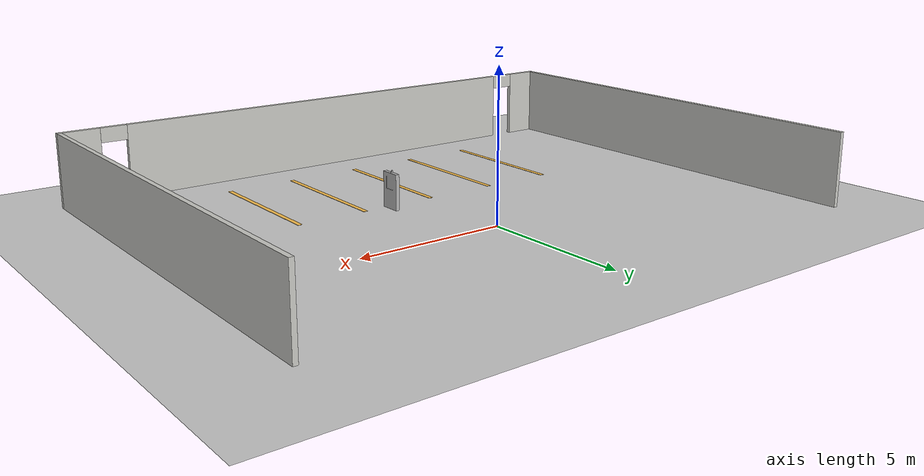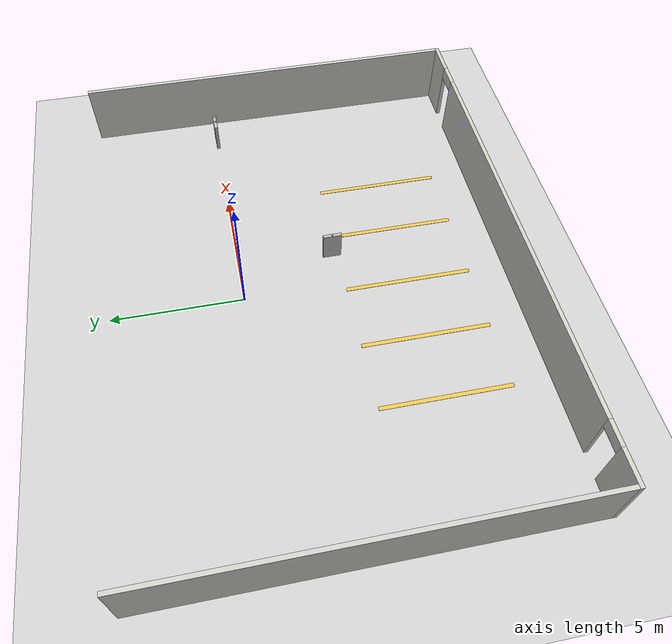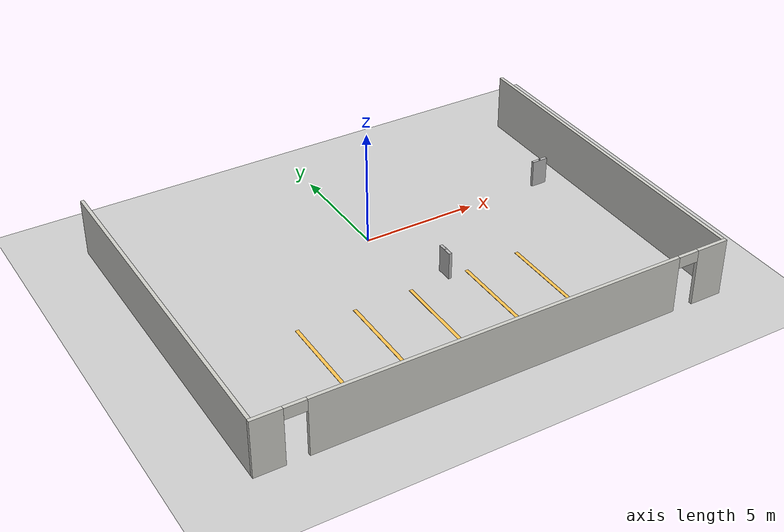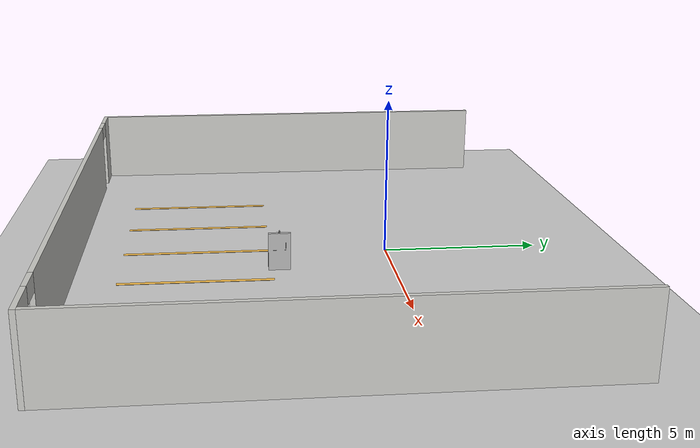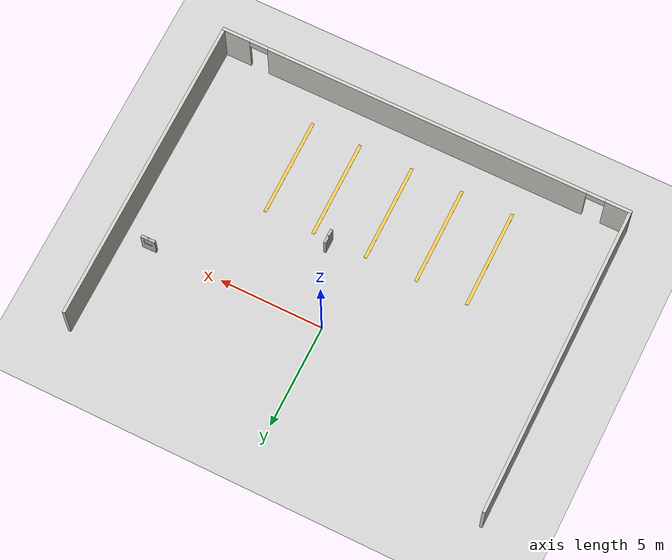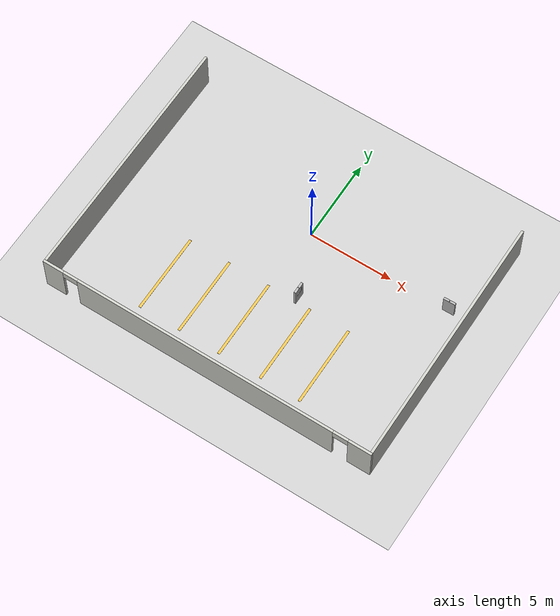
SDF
<sdf version="1.6">
 <world name="default">
  <light name="sun" type="directional">
   <pose>0 0 10 0 -0 0</pose>
   <diffuse>0.8 0.8 0.8 1</diffuse>
   <specular>0.2 0.2 0.2 1</specular>
   <attenuation>
    <range>1000</range>
    <constant>0.9</constant>
    <linear>0.01</linear>
    <quadratic>0.001</quadratic>
   </attenuation>
   <direction>-0.5 0.1 -0.9</direction>
  </light>
  <model name="ground_plane">
   <static>1</static>
   <link name="link">
    <collision name="collision">
     <geometry><plane><normal>0 0 1</normal><size>100 100</size></plane></geometry>
     <surface>
      <contact><collide_bitmask>65535</collide_bitmask></contact>
      <friction><ode><mu>100</mu><mu2>50</mu2></ode></friction>
     </surface>
    </collision>
    <visual name="visual">
     <cast_shadows>0</cast_shadows>
     <geometry><plane><normal>0 0 1</normal><size>100 100</size></plane></geometry>
     <material>
      <script><uri>file://media/materials/scripts/gazebo.material</uri><name>Gazebo/Grey</name></script>
     </material>
    </visual>
   </link>
  </model>
  <gravity>0 0 -9.8</gravity>
  <magnetic_field>6e-06 2.3e-05 -4.2e-05</magnetic_field>
  <atmosphere type="adiabatic"/>
  <physics name="default_physics" default="0" type="ode">
   <max_step_size>0.001</max_step_size>
   <real_time_factor>1</real_time_factor>
   <real_time_update_rate>1000</real_time_update_rate>
  </physics>
  <scene><ambient>0.4 0.4 0.4 1</ambient><background>0.7 0.7 0.7 1</background><shadows>1</shadows></scene>
  <audio><device>default</device></audio>
  <spherical_coordinates>
   <surface_model>EARTH_WGS84</surface_model>
   <latitude_deg>0</latitude_deg>
   <longitude_deg>0</longitude_deg>
   <elevation>0</elevation>
   <heading_deg>0</heading_deg>
  </spherical_coordinates>
  <model name="parking_lot_0">
   <pose>-0.108436 -2.52637 0 0 -0 0</pose>
   <link name="Wall_38">
    <pose>0 -7.5 0 0 -0 0</pose>
    <visual name="Wall_38_Visual_0">
     <pose>-9.44335 0 1.25 0 -0 0</pose>
     <geometry><box><size>1.26329 0.15 2.5</size></box></geometry>
     <material>
      <script><uri>file://media/materials/scripts/gazebo.material</uri><name>Gazebo/CeilingTiled</name></script>
      <ambient>1 1 1 1</ambient>
     </material>
     <meta><layer>0</layer></meta>
    </visual>
    <collision name="Wall_38_Collision_0">
     <geometry><box><size>1.26329 0.15 2.5</size></box></geometry>
     <pose>-9.44335 0 1.25 0 -0 0</pose>
    </collision>
    <visual name="Wall_38_Visual_1">
     <pose>-0.064884 0 1.25 0 -0 0</pose>
     <geometry><box><size>15.6936 0.15 2.5</size></box></geometry>
     <material>
      <script><uri>file://media/materials/scripts/gazebo.material</uri><name>Gazebo/CeilingTiled</name></script>
      <ambient>1 1 1 1</ambient>
     </material>
     <meta><layer>0</layer></meta>
    </visual>
    <collision name="Wall_38_Collision_1">
     <geometry><box><size>15.6936 0.15 2.5</size></box></geometry>
     <pose>-0.064884 0 1.25 0 -0 0</pose>
    </collision>
    <visual name="Wall_38_Visual_2">
     <pose>9.37847 0 1.25 0 -0 0</pose>
     <geometry><box><size>1.39306 0.15 2.5</size></box></geometry>
     <material>
      <script><uri>file://media/materials/scripts/gazebo.material</uri><name>Gazebo/CeilingTiled</name></script>
      <ambient>1 1 1 1</ambient>
     </material>
     <meta><layer>0</layer></meta>
    </visual>
    <collision name="Wall_38_Collision_2">
     <geometry><box><size>1.39306 0.15 2.5</size></box></geometry>
     <pose>9.37847 0 1.25 0 -0 0</pose>
    </collision>
    <visual name="Wall_38_Visual_3">
     <pose>-8.36171 0 2.25 0 -0 0</pose>
     <geometry><box><size>0.9 0.15 0.5</size></box></geometry>
     <material>
      <script><uri>file://media/materials/scripts/gazebo.material</uri><name>Gazebo/CeilingTiled</name></script>
      <ambient>1 1 1 1</ambient>
     </material>
     <meta><layer>0</layer></meta>
    </visual>
    <collision name="Wall_38_Collision_3">
     <geometry><box><size>0.9 0.15 0.5</size></box></geometry>
     <pose>-8.36171 0 2.25 0 -0 0</pose>
    </collision>
    <visual name="Wall_38_Visual_4">
     <pose>8.23194 0 2.25 0 -0 0</pose>
     <geometry><box><size>0.9 0.15 0.5</size></box></geometry>
     <material>
      <script><uri>file://media/materials/scripts/gazebo.material</uri><name>Gazebo/CeilingTiled</name></script>
      <ambient>1 1 1 1</ambient>
     </material>
     <meta><layer>0</layer></meta>
    </visual>
    <collision name="Wall_38_Collision_4">
     <geometry><box><size>0.9 0.15 0.5</size></box></geometry>
     <pose>8.23194 0 2.25 0 -0 0</pose>
    </collision>
    <kinematic>1</kinematic>
   </link>
   <link name="Wall_40">
    <collision name="Wall_40_Collision">
     <geometry><box><size>15 0.15 2.5</size></box></geometry>
     <pose>0 0 1.25 0 -0 0</pose>
    </collision>
    <visual name="Wall_40_Visual">
     <pose>0 0 1.25 0 -0 0</pose>
     <geometry><box><size>15 0.15 2.5</size></box></geometry>
     <material>
      <script><uri>file://media/materials/scripts/gazebo.material</uri><name>Gazebo/CeilingTiled</name></script>
      <ambient>1 1 1 1</ambient>
     </material>
     <meta><layer>0</layer></meta>
    </visual>
    <pose>-10 0.075 0 0 -0 1.5708</pose>
    <kinematic>1</kinematic>
   </link>
   <link name="Wall_42">
    <collision name="Wall_42_Collision">
     <geometry><box><size>15 0.15 2.5</size></box></geometry>
     <pose>0 0 1.25 0 -0 0</pose>
    </collision>
    <visual name="Wall_42_Visual">
     <pose>0 0 1.25 0 -0 0</pose>
     <geometry><box><size>15 0.15 2.5</size></box></geometry>
     <material>
      <script><uri>file://media/materials/scripts/gazebo.material</uri><name>Gazebo/CeilingTiled</name></script>
      <ambient>1 1 1 1</ambient>
     </material>
     <meta><layer>0</layer></meta>
    </visual>
    <pose>10 0.075 0 0 -0 -1.5708</pose>
    <kinematic>1</kinematic>
   </link>
   <link name="Wall_44">
    <collision name="Wall_44_Collision">
     <geometry><box><size>4.8 0.15 0.01</size></box></geometry>
     <pose>0 0 0.005 0 -0 0</pose>
    </collision>
    <visual name="Wall_44_Visual">
     <pose>0 0 0.005 0 -0 0</pose>
     <geometry><box><size>4.8 0.15 0.01</size></box></geometry>
     <material>
      <script><uri>file://media/materials/scripts/gazebo.material</uri><name>Gazebo/Grey</name></script>
      <ambient>1 0.764706 0.305882 1</ambient>
     </material>
     <meta><layer>0</layer></meta>
    </visual>
    <pose>-5.15 -3.675 0 0 -0 -1.5708</pose>
    <kinematic>1</kinematic>
   </link>
   <link name="Wall_46">
    <collision name="Wall_46_Collision">
     <geometry><box><size>4.8 0.15 0.01</size></box></geometry>
     <pose>0 0 0.005 0 -0 0</pose>
    </collision>
    <visual name="Wall_46_Visual">
     <pose>0 0 0.005 0 -0 0</pose>
     <geometry><box><size>4.8 0.15 0.01</size></box></geometry>
     <material>
      <script><uri>file://media/materials/scripts/gazebo.material</uri><name>Gazebo/Grey</name></script>
      <ambient>1 0.764706 0.305882 1</ambient>
     </material>
     <meta><layer>0</layer></meta>
    </visual>
    <pose>-0.15 -3.675 0 0 -0 -1.5708</pose>
    <kinematic>1</kinematic>
   </link>
   <link name="Wall_48">
    <collision name="Wall_48_Collision">
     <geometry><box><size>4.8 0.15 0.01</size></box></geometry>
     <pose>0 0 0.0045 0 -0 0</pose>
    </collision>
    <visual name="Wall_48_Visual">
     <pose>0 0 0.0045 0 -0 0</pose>
     <geometry><box><size>4.8 0.15 0.01</size></box></geometry>
     <material>
      <script><uri>file://media/materials/scripts/gazebo.material</uri><name>Gazebo/Grey</name></script>
      <ambient>1 0.764706 0.305882 1</ambient>
     </material>
     <meta><layer>0</layer></meta>
    </visual>
    <pose>4.85 -3.675 0 0 -0 -1.5708</pose>
    <kinematic>1</kinematic>
   </link>
   <link name="Wall_50">
    <collision name="Wall_50_Collision">
     <geometry><box><size>4.8 0.15 0.01</size></box></geometry>
     <pose>0 0 0.005 0 -0 0</pose>
    </collision>
    <visual name="Wall_50_Visual">
     <pose>0 0 0.005 0 -0 0</pose>
     <geometry><box><size>4.8 0.15 0.01</size></box></geometry>
     <material>
      <script><uri>file://media/materials/scripts/gazebo.material</uri><name>Gazebo/Grey</name></script>
      <ambient>1 0.764706 0.305882 1</ambient>
     </material>
     <meta><layer>0</layer></meta>
    </visual>
    <pose>-2.65 -3.675 0 0 -0 -1.5708</pose>
    <kinematic>1</kinematic>
   </link>
   <link name="Wall_53">
    <collision name="Wall_53_Collision">
     <geometry><box><size>4.8 0.15 0.01</size></box></geometry>
     <pose>0 0 0.005 0 -0 0</pose>
    </collision>
    <visual name="Wall_53_Visual">
     <pose>0 0 0.005 0 -0 0</pose>
     <geometry><box><size>4.8 0.15 0.01</size></box></geometry>
     <material>
      <script><uri>file://media/materials/scripts/gazebo.material</uri><name>Gazebo/Grey</name></script>
      <ambient>1 0.764706 0.305882 1</ambient>
     </material>
     <meta><layer>0</layer></meta>
    </visual>
    <pose>2.45 -3.675 0 0 -0 -1.5708</pose>
    <kinematic>1</kinematic>
   </link>
   <static>1</static>
  </model>
  <model name="station">
   <link name="station_base_link">
    <inertial>
     <mass>0.0001</mass>
     <inertia>
      <ixx>5.5871</ixx>
      <ixy>4.5401e-09</ixy>
      <ixz>-2.5039e-10</ixz>
      <iyy>1.4361</iyy>
      <iyz>-0.0014347</iyz>
      <izz>6.8461</izz>
     </inertia>
    </inertial>
    <kinematic>1</kinematic>
    <visual name="station_base_link_visual">
     <geometry>
      <mesh><scale>1 1 1</scale><uri>/home/zbk/catkin_ws/src/car_with_port/meshes/station.dae</uri></mesh>
     </geometry>
    </visual>
    <collision name="station_base_link_collision">
     <geometry>
      <mesh><uri>/home/zbk/catkin_ws/src/car_with_port/meshes/station.dae</uri><scale>1 1 1</scale></mesh>
     </geometry>
     <surface>
      <friction>
       <ode><mu>1</mu><mu2>1</mu2><fdir1>0 0 0</fdir1><slip1>0</slip1><slip2>0</slip2></ode>
       <torsional>
        <coefficient>1</coefficient>
        <patch_radius>0</patch_radius>
        <surface_radius>0</surface_radius>
        <use_patch_radius>1</use_patch_radius>
        <ode><slip>0</slip></ode>
       </torsional>
      </friction>
      <bounce><restitution_coefficient>0</restitution_coefficient><threshold>1e+06</threshold></bounce>
      <contact>
       <collide_without_contact>0</collide_without_contact>
       <collide_without_contact_bitmask>1</collide_without_contact_bitmask>
       <collide_bitmask>1</collide_bitmask>
       <ode>
        <soft_cfm>0</soft_cfm>
        <soft_erp>0.2</soft_erp>
        <kp>1e+13</kp>
        <kd>1</kd>
        <max_vel>0.01</max_vel>
        <min_depth>0</min_depth>
       </ode>
       <bullet>
        <split_impulse>1</split_impulse>
        <split_impulse_penetration_threshold>-0.01</split_impulse_penetration_threshold>
        <soft_cfm>0</soft_cfm>
        <soft_erp>0.2</soft_erp>
        <kp>1e+13</kp>
        <kd>1</kd>
       </bullet>
      </contact>
     </surface>
    </collision>
   </link>
   <static>0</static>
   <pose>1.40907 -3.94709 -1.2e-05 1e-06 -2.8e-05 -0</pose>
  </model>
  <model name="station_0">
   <link name="station_base_link">
    <inertial>
     <mass>0.0001</mass>
     <inertia>
      <ixx>5.5871</ixx>
      <ixy>4.5401e-09</ixy>
      <ixz>-2.5039e-10</ixz>
      <iyy>1.4361</iyy>
      <iyz>-0.0014347</iyz>
      <izz>6.8461</izz>
     </inertia>
    </inertial>
    <kinematic>1</kinematic>
    <visual name="station_base_link_visual">
     <geometry>
      <mesh><scale>1 1 1</scale><uri>/home/zbk/catkin_ws/src/car_with_port/meshes/station.dae</uri></mesh>
     </geometry>
    </visual>
    <collision name="station_base_link_collision">
     <geometry>
      <mesh><uri>/home/zbk/catkin_ws/src/car_with_port/meshes/station.dae</uri><scale>1 1 1</scale></mesh>
     </geometry>
     <surface>
      <friction>
       <ode><mu>1</mu><mu2>1</mu2><fdir1>0 0 0</fdir1><slip1>0</slip1><slip2>0</slip2></ode>
       <torsional>
        <coefficient>1</coefficient>
        <patch_radius>0</patch_radius>
        <surface_radius>0</surface_radius>
        <use_patch_radius>1</use_patch_radius>
        <ode><slip>0</slip></ode>
       </torsional>
      </friction>
      <bounce><restitution_coefficient>0</restitution_coefficient><threshold>1e+06</threshold></bounce>
      <contact>
       <collide_without_contact>0</collide_without_contact>
       <collide_without_contact_bitmask>1</collide_without_contact_bitmask>
       <collide_bitmask>1</collide_bitmask>
       <ode>
        <soft_cfm>0</soft_cfm>
        <soft_erp>0.2</soft_erp>
        <kp>1e+13</kp>
        <kd>1</kd>
        <max_vel>0.01</max_vel>
        <min_depth>0</min_depth>
       </ode>
       <bullet>
        <split_impulse>1</split_impulse>
        <split_impulse_penetration_threshold>-0.01</split_impulse_penetration_threshold>
        <soft_cfm>0</soft_cfm>
        <soft_erp>0.2</soft_erp>
        <kp>1e+13</kp>
        <kd>1</kd>
       </bullet>
      </contact>
     </surface>
    </collision>
   </link>
   <static>0</static>
   <pose>8.88254 -0.018661 0 0 -0 1.58768</pose>
  </model>
  <light name="user_directional_light_0" type="directional">
   <pose>6.12352 0.241408 1 0 -0 0</pose>
   <diffuse>0.5 0.5 0.5 1</diffuse>
   <specular>0.1 0.1 0.1 1</specular>
   <direction>0.1 0.1 -0.9</direction>
   <attenuation>
    <range>20</range>
    <constant>0.5</constant>
    <linear>0.01</linear>
    <quadratic>0.001</quadratic>
   </attenuation>
  </light>
 </world>
</sdf>
